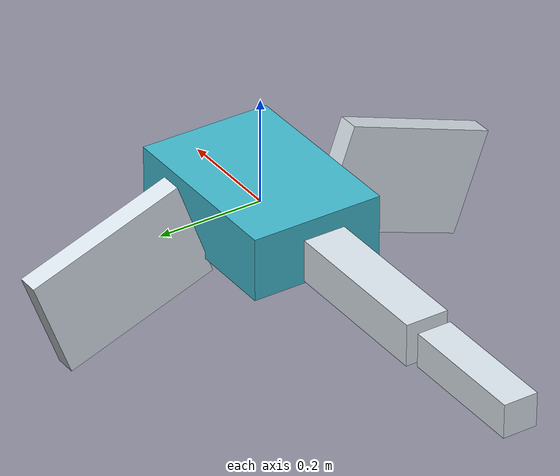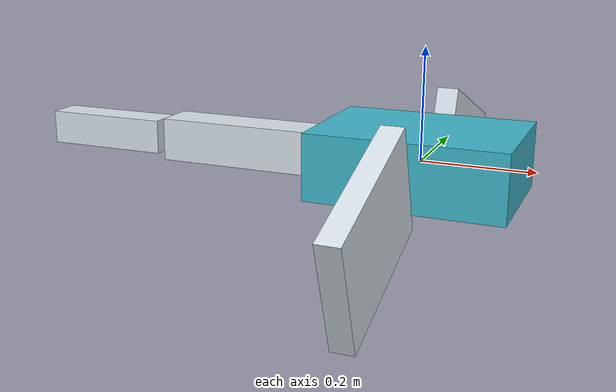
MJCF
<mujoco model="criatura">
  <compiler angle="degree" autolimits="true"/>
  <option timestep="0.002083" gravity="0 0 0" integrator="implicitfast"/>
  <default>
    <geom type="box" density="300.0" rgba="0.85 0.89 0.92 1"/>
    <joint type="hinge"/>
    <motor ctrlrange="-1 1"/>
  </default>
  <worldbody>
    <body name="p0_n0" pos="0.00000 0.00000 0.00000" quat="1.000000 0.000000 0.000000 0.000000">
      <freejoint name="raiz"/>
      <geom name="g_p0_n0" size="0.17500 0.12500 0.06000" rgba="0.25 0.72 0.8 1"/>
      <body name="p1_n1" pos="0.00000 0.28475 -0.04614" quat="0.579228 0.405580 0.579228 0.405580">
        <joint name="p1_n1_j0" axis="0.0000 1.0000 0.0000" pos="-0.17000 0 0" range="-45.00 45.00" damping="0.4000"/>
        <joint name="p1_n1_j1" axis="0.0000 0.0000 1.0000" pos="-0.17000 0 0" range="-45.00 45.00" damping="0.4000"/>
        <geom name="g_p1_n1" size="0.15000 0.10000 0.02000"/>
      </body>
      <body name="p2_n1" pos="0.00000 -0.28475 -0.04614" quat="0.579228 -0.405580 0.579228 -0.405580">
        <joint name="p2_n1_j0" axis="0.0000 -1.0000 0.0000" pos="-0.17000 0 0" range="-45.00 45.00" damping="0.4000"/>
        <joint name="p2_n1_j1" axis="0.0000 0.0000 1.0000" pos="-0.17000 0 0" range="-45.00 45.00" damping="0.4000"/>
        <geom name="g_p2_n1" size="0.15000 0.10000 0.02000"/>
      </body>
      <body name="p3_n2" pos="-0.34500 0.00000 0.00000" quat="0.000000 0.000000 1.000000 0.000000">
        <joint name="p3_n2_j0" axis="0.0000 0.0000 1.0000" pos="-0.17000 0 0" range="-50.00 50.00" damping="0.3200"/>
        <geom name="g_p3_n2" size="0.15000 0.04000 0.04000"/>
        <body name="p4_n2" pos="0.29000 0.00000 0.00000" quat="1.000000 0.000000 0.000000 0.000000">
          <joint name="p4_n2_j0" axis="0.0000 0.0000 1.0000" pos="-0.14000 0 0" range="-50.00 50.00" damping="0.2048"/>
          <geom name="g_p4_n2" size="0.12000 0.03200 0.03200"/>
        </body>
      </body>
    </body>
  </worldbody>
  <actuator>
    <motor name="m_p1_n1_j0" joint="p1_n1_j0" gear="8.0000"/>
    <motor name="m_p1_n1_j1" joint="p1_n1_j1" gear="8.0000"/>
    <motor name="m_p2_n1_j0" joint="p2_n1_j0" gear="-8.0000"/>
    <motor name="m_p2_n1_j1" joint="p2_n1_j1" gear="-8.0000"/>
    <motor name="m_p3_n2_j0" joint="p3_n2_j0" gear="6.4000"/>
    <motor name="m_p4_n2_j0" joint="p4_n2_j0" gear="4.0960"/>
  </actuator>
</mujoco>
